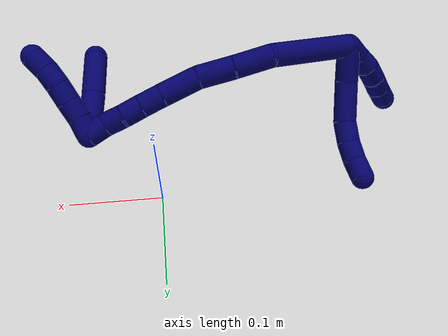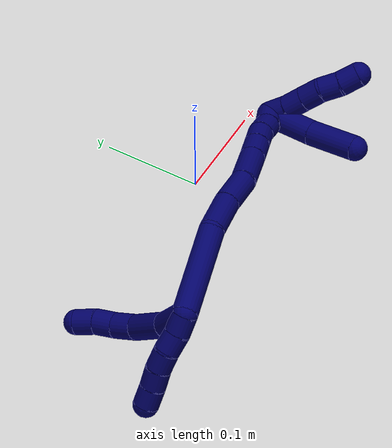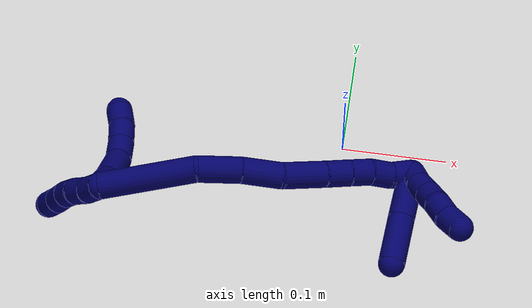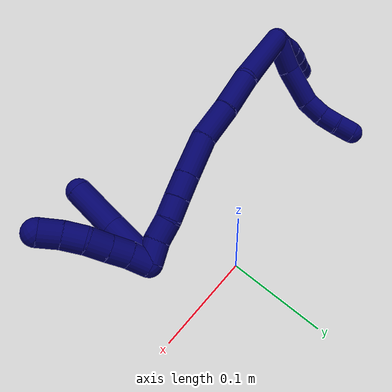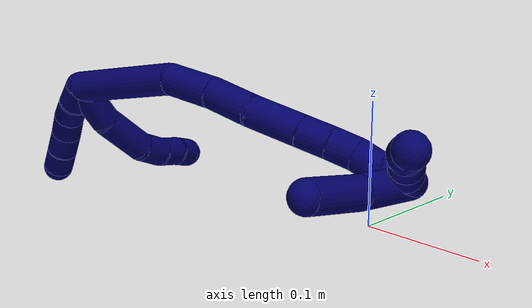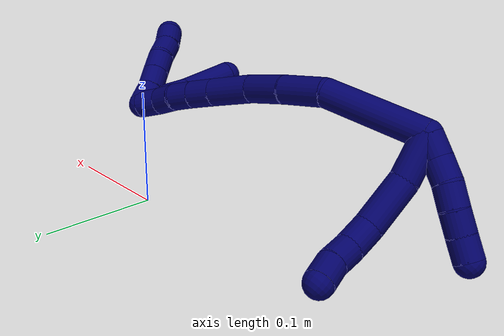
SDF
<sdf version="1.7">
 <world name="default">
  <model name="7">
   <static>0</static>
   <link name="7">
    <collision name="collision-cylinder-e_1_2_8">
     <pose>0.000364 -0.005496 -0.01894 2.85917 0.018442 0.129552</pose>
     <geometry><cylinder><radius>0.0125</radius><length>0.039449</length></cylinder></geometry>
     <surface>
      <friction><ode><mu>1.16</mu><mu2>1.16</mu2><slip1>0</slip1><slip2>0</slip2></ode></friction>
      <contact><ode><kp>1e+06</kp><kd>1</kd><max_vel>0</max_vel><min_depth>0.001</min_depth></ode></contact>
     </surface>
    </collision>
    <visual name="visual-cylinder-e_1_2_8">
     <pose>0.000364 -0.005496 -0.01894 2.85917 0.018442 0.129552</pose>
     <geometry><cylinder><radius>0.0125</radius><length>0.039449</length></cylinder></geometry>
     <material><ambient>0.003922 0 0.403922 1</ambient></material>
    </visual>
    <collision name="collision-cylinder-e_2_8_9">
     <pose>0.001228 -0.011659 -0.060329 3.11186 0.022283 1.28631</pose>
     <geometry><cylinder><radius>0.0125</radius><length>0.044929</length></cylinder></geometry>
     <surface>
      <friction><ode><mu>1.16</mu><mu2>1.16</mu2><slip1>0</slip1><slip2>0</slip2></ode></friction>
      <contact><ode><kp>1e+06</kp><kd>1</kd><max_vel>0</max_vel><min_depth>0.001</min_depth></ode></contact>
     </surface>
    </collision>
    <visual name="visual-cylinder-e_2_8_9">
     <pose>0.001228 -0.011659 -0.060329 3.11186 0.022283 1.28631</pose>
     <geometry><cylinder><radius>0.0125</radius><length>0.044929</length></cylinder></geometry>
     <material><ambient>0.003922 0 0.403922 1</ambient></material>
    </visual>
    <collision name="collision-cylinder-e_3_9_10">
     <pose>-0.000229 -0.009315 -0.094318 -2.88624 -0.162709 1.1317</pose>
     <geometry><cylinder><radius>0.0125</radius><length>0.024173</length></cylinder></geometry>
     <surface>
      <friction><ode><mu>1.16</mu><mu2>1.16</mu2><slip1>0</slip1><slip2>0</slip2></ode></friction>
      <contact><ode><kp>1e+06</kp><kd>1</kd><max_vel>0</max_vel><min_depth>0.001</min_depth></ode></contact>
     </surface>
    </collision>
    <visual name="visual-cylinder-e_3_9_10">
     <pose>-0.000229 -0.009315 -0.094318 -2.88624 -0.162709 1.1317</pose>
     <geometry><cylinder><radius>0.0125</radius><length>0.024173</length></cylinder></geometry>
     <material><ambient>0.003922 0 0.403922 1</ambient></material>
    </visual>
    <collision name="collision-cylinder-e_4_10_11">
     <pose>-0.004808 -0.001892 -0.114852 -2.68569 -0.255882 1.01265</pose>
     <geometry><cylinder><radius>0.0125</radius><length>0.020708</length></cylinder></geometry>
     <surface>
      <friction><ode><mu>1.16</mu><mu2>1.16</mu2><slip1>0</slip1><slip2>0</slip2></ode></friction>
      <contact><ode><kp>1e+06</kp><kd>1</kd><max_vel>0</max_vel><min_depth>0.001</min_depth></ode></contact>
     </surface>
    </collision>
    <visual name="visual-cylinder-e_4_10_11">
     <pose>-0.004808 -0.001892 -0.114852 -2.68569 -0.255882 1.01265</pose>
     <geometry><cylinder><radius>0.0125</radius><length>0.020708</length></cylinder></geometry>
     <material><ambient>0.003922 0 0.403922 1</ambient></material>
    </visual>
    <collision name="collision-cylinder-e_5_11_6">
     <pose>-0.011466 0.005412 -0.132949 -2.8338 -0.399914 1.835</pose>
     <geometry><cylinder><radius>0.0125</radius><length>0.020741</length></cylinder></geometry>
     <surface>
      <friction><ode><mu>1.16</mu><mu2>1.16</mu2><slip1>0</slip1><slip2>0</slip2></ode></friction>
      <contact><ode><kp>1e+06</kp><kd>1</kd><max_vel>0</max_vel><min_depth>0.001</min_depth></ode></contact>
     </surface>
    </collision>
    <visual name="visual-cylinder-e_5_11_6">
     <pose>-0.011466 0.005412 -0.132949 -2.8338 -0.399914 1.835</pose>
     <geometry><cylinder><radius>0.0125</radius><length>0.020741</length></cylinder></geometry>
     <material><ambient>0.003922 0 0.403922 1</ambient></material>
    </visual>
    <collision name="collision-cylinder-e_1_2_12">
     <pose>-0.005481 -0.006708 -0.004997 2.21101 -0.58004 -1.07262</pose>
     <geometry><cylinder><radius>0.0125</radius><length>0.02</length></cylinder></geometry>
     <surface>
      <friction><ode><mu>1.16</mu><mu2>1.16</mu2><slip1>0</slip1><slip2>0</slip2></ode></friction>
      <contact><ode><kp>1e+06</kp><kd>1</kd><max_vel>0</max_vel><min_depth>0.001</min_depth></ode></contact>
     </surface>
    </collision>
    <visual name="visual-cylinder-e_1_2_12">
     <pose>-0.005481 -0.006708 -0.004997 2.21101 -0.58004 -1.07262</pose>
     <geometry><cylinder><radius>0.0125</radius><length>0.02</length></cylinder></geometry>
     <material><ambient>0.003922 0 0.403922 1</ambient></material>
    </visual>
    <collision name="collision-cylinder-e_2_12_13">
     <pose>-0.017259 -0.018887 -0.015507 2.36016 -0.68129 -1.42119</pose>
     <geometry><cylinder><radius>0.0125</radius><length>0.02</length></cylinder></geometry>
     <surface>
      <friction><ode><mu>1.16</mu><mu2>1.16</mu2><slip1>0</slip1><slip2>0</slip2></ode></friction>
      <contact><ode><kp>1e+06</kp><kd>1</kd><max_vel>0</max_vel><min_depth>0.001</min_depth></ode></contact>
     </surface>
    </collision>
    <visual name="visual-cylinder-e_2_12_13">
     <pose>-0.017259 -0.018887 -0.015507 2.36016 -0.68129 -1.42119</pose>
     <geometry><cylinder><radius>0.0125</radius><length>0.02</length></cylinder></geometry>
     <material><ambient>0.003922 0 0.403922 1</ambient></material>
    </visual>
    <collision name="collision-cylinder-e_3_13_14">
     <pose>-0.02816 -0.030728 -0.027204 2.34115 -0.478362 -1.04578</pose>
     <geometry><cylinder><radius>0.0125</radius><length>0.02</length></cylinder></geometry>
     <surface>
      <friction><ode><mu>1.16</mu><mu2>1.16</mu2><slip1>0</slip1><slip2>0</slip2></ode></friction>
      <contact><ode><kp>1e+06</kp><kd>1</kd><max_vel>0</max_vel><min_depth>0.001</min_depth></ode></contact>
     </surface>
    </collision>
    <visual name="visual-cylinder-e_3_13_14">
     <pose>-0.02816 -0.030728 -0.027204 2.34115 -0.478362 -1.04578</pose>
     <geometry><cylinder><radius>0.0125</radius><length>0.02</length></cylinder></geometry>
     <material><ambient>0.003922 0 0.403922 1</ambient></material>
    </visual>
    <collision name="collision-cylinder-e_4_14_15">
     <pose>-0.036674 -0.044381 -0.039016 2.22898 -0.401793 -0.786525</pose>
     <geometry><cylinder><radius>0.0125</radius><length>0.02</length></cylinder></geometry>
     <surface>
      <friction><ode><mu>1.16</mu><mu2>1.16</mu2><slip1>0</slip1><slip2>0</slip2></ode></friction>
      <contact><ode><kp>1e+06</kp><kd>1</kd><max_vel>0</max_vel><min_depth>0.001</min_depth></ode></contact>
     </surface>
    </collision>
    <visual name="visual-cylinder-e_4_14_15">
     <pose>-0.036674 -0.044381 -0.039016 2.22898 -0.401793 -0.786525</pose>
     <geometry><cylinder><radius>0.0125</radius><length>0.02</length></cylinder></geometry>
     <material><ambient>0.003922 0 0.403922 1</ambient></material>
    </visual>
    <collision name="collision-cylinder-e_5_15_5">
     <pose>-0.045026 -0.058549 -0.050376 2.26475 -0.460218 -0.926717</pose>
     <geometry><cylinder><radius>0.0125</radius><length>0.02</length></cylinder></geometry>
     <surface>
      <friction><ode><mu>1.16</mu><mu2>1.16</mu2><slip1>0</slip1><slip2>0</slip2></ode></friction>
      <contact><ode><kp>1e+06</kp><kd>1</kd><max_vel>0</max_vel><min_depth>0.001</min_depth></ode></contact>
     </surface>
    </collision>
    <visual name="visual-cylinder-e_5_15_5">
     <pose>-0.045026 -0.058549 -0.050376 2.26475 -0.460218 -0.926717</pose>
     <geometry><cylinder><radius>0.0125</radius><length>0.02</length></cylinder></geometry>
     <material><ambient>0.003922 0 0.403922 1</ambient></material>
    </visual>
    <collision name="collision-cylinder-e_1_2_16">
     <pose>0.040875 0.019719 -0.006355 -1.88256 1.10169 -1.40123</pose>
     <geometry><cylinder><radius>0.0125</radius><length>0.091651</length></cylinder></geometry>
     <surface>
      <friction><ode><mu>1.16</mu><mu2>1.16</mu2><slip1>0</slip1><slip2>0</slip2></ode></friction>
      <contact><ode><kp>1e+06</kp><kd>1</kd><max_vel>0</max_vel><min_depth>0.001</min_depth></ode></contact>
     </surface>
    </collision>
    <visual name="visual-cylinder-e_1_2_16">
     <pose>0.040875 0.019719 -0.006355 -1.88256 1.10169 -1.40123</pose>
     <geometry><cylinder><radius>0.0125</radius><length>0.091651</length></cylinder></geometry>
     <material><ambient>0.003922 0 0.403922 1</ambient></material>
    </visual>
    <collision name="collision-cylinder-e_2_16_17">
     <pose>0.101325 0.042394 -0.018752 -2.68659 1.23979 -2.51429</pose>
     <geometry><cylinder><radius>0.0125</radius><length>0.041396</length></cylinder></geometry>
     <surface>
      <friction><ode><mu>1.16</mu><mu2>1.16</mu2><slip1>0</slip1><slip2>0</slip2></ode></friction>
      <contact><ode><kp>1e+06</kp><kd>1</kd><max_vel>0</max_vel><min_depth>0.001</min_depth></ode></contact>
     </surface>
    </collision>
    <visual name="visual-cylinder-e_2_16_17">
     <pose>0.101325 0.042394 -0.018752 -2.68659 1.23979 -2.51429</pose>
     <geometry><cylinder><radius>0.0125</radius><length>0.041396</length></cylinder></geometry>
     <material><ambient>0.003922 0 0.403922 1</ambient></material>
    </visual>
    <collision name="collision-cylinder-e_3_17_18">
     <pose>0.139402 0.0461 -0.029786 -2.99241 1.30448 -2.94652</pose>
     <geometry><cylinder><radius>0.0125</radius><length>0.038358</length></cylinder></geometry>
     <surface>
      <friction><ode><mu>1.16</mu><mu2>1.16</mu2><slip1>0</slip1><slip2>0</slip2></ode></friction>
      <contact><ode><kp>1e+06</kp><kd>1</kd><max_vel>0</max_vel><min_depth>0.001</min_depth></ode></contact>
     </surface>
    </collision>
    <visual name="visual-cylinder-e_3_17_18">
     <pose>0.139402 0.0461 -0.029786 -2.99241 1.30448 -2.94652</pose>
     <geometry><cylinder><radius>0.0125</radius><length>0.038358</length></cylinder></geometry>
     <material><ambient>0.003922 0 0.403922 1</ambient></material>
    </visual>
    <collision name="collision-cylinder-e_4_18_19">
     <pose>0.176352 0.049365 -0.043921 -2.87317 1.09594 -2.70614</pose>
     <geometry><cylinder><radius>0.0125</radius><length>0.041485</length></cylinder></geometry>
     <surface>
      <friction><ode><mu>1.16</mu><mu2>1.16</mu2><slip1>0</slip1><slip2>0</slip2></ode></friction>
      <contact><ode><kp>1e+06</kp><kd>1</kd><max_vel>0</max_vel><min_depth>0.001</min_depth></ode></contact>
     </surface>
    </collision>
    <visual name="visual-cylinder-e_4_18_19">
     <pose>0.176352 0.049365 -0.043921 -2.87317 1.09594 -2.70614</pose>
     <geometry><cylinder><radius>0.0125</radius><length>0.041485</length></cylinder></geometry>
     <material><ambient>0.003922 0 0.403922 1</ambient></material>
    </visual>
    <collision name="collision-cylinder-e_5_19_20">
     <pose>0.20529 0.053374 -0.058521 -2.87431 1.07628 -2.69851</pose>
     <geometry><cylinder><radius>0.0125</radius><length>0.023837</length></cylinder></geometry>
     <surface>
      <friction><ode><mu>1.16</mu><mu2>1.16</mu2><slip1>0</slip1><slip2>0</slip2></ode></friction>
      <contact><ode><kp>1e+06</kp><kd>1</kd><max_vel>0</max_vel><min_depth>0.001</min_depth></ode></contact>
     </surface>
    </collision>
    <visual name="visual-cylinder-e_5_19_20">
     <pose>0.20529 0.053374 -0.058521 -2.87431 1.07628 -2.69851</pose>
     <geometry><cylinder><radius>0.0125</radius><length>0.023837</length></cylinder></geometry>
     <material><ambient>0.003922 0 0.403922 1</ambient></material>
    </visual>
    <collision name="collision-cylinder-e_6_20_21">
     <pose>0.224955 0.055988 -0.069003 -2.92241 1.05933 -2.77005</pose>
     <geometry><cylinder><radius>0.0125</radius><length>0.021042</length></cylinder></geometry>
     <surface>
      <friction><ode><mu>1.16</mu><mu2>1.16</mu2><slip1>0</slip1><slip2>0</slip2></ode></friction>
      <contact><ode><kp>1e+06</kp><kd>1</kd><max_vel>0</max_vel><min_depth>0.001</min_depth></ode></contact>
     </surface>
    </collision>
    <visual name="visual-cylinder-e_6_20_21">
     <pose>0.224955 0.055988 -0.069003 -2.92241 1.05933 -2.77005</pose>
     <geometry><cylinder><radius>0.0125</radius><length>0.021042</length></cylinder></geometry>
     <material><ambient>0.003922 0 0.403922 1</ambient></material>
    </visual>
    <collision name="collision-cylinder-e_7_21_22">
     <pose>0.243621 0.056266 -0.07835 2.94927 1.13659 2.84175</pose>
     <geometry><cylinder><radius>0.0125</radius><length>0.020924</length></cylinder></geometry>
     <surface>
      <friction><ode><mu>1.16</mu><mu2>1.16</mu2><slip1>0</slip1><slip2>0</slip2></ode></friction>
      <contact><ode><kp>1e+06</kp><kd>1</kd><max_vel>0</max_vel><min_depth>0.001</min_depth></ode></contact>
     </surface>
    </collision>
    <visual name="visual-cylinder-e_7_21_22">
     <pose>0.243621 0.056266 -0.07835 2.94927 1.13659 2.84175</pose>
     <geometry><cylinder><radius>0.0125</radius><length>0.020924</length></cylinder></geometry>
     <material><ambient>0.003922 0 0.403922 1</ambient></material>
    </visual>
    <collision name="collision-cylinder-e_8_22_1">
     <pose>0.261955 0.056893 -0.088428 -2.892 0.979065 -2.6791</pose>
     <geometry><cylinder><radius>0.0125</radius><length>0.021307</length></cylinder></geometry>
     <surface>
      <friction><ode><mu>1.16</mu><mu2>1.16</mu2><slip1>0</slip1><slip2>0</slip2></ode></friction>
      <contact><ode><kp>1e+06</kp><kd>1</kd><max_vel>0</max_vel><min_depth>0.001</min_depth></ode></contact>
     </surface>
    </collision>
    <visual name="visual-cylinder-e_8_22_1">
     <pose>0.261955 0.056893 -0.088428 -2.892 0.979065 -2.6791</pose>
     <geometry><cylinder><radius>0.0125</radius><length>0.021307</length></cylinder></geometry>
     <material><ambient>0.003922 0 0.403922 1</ambient></material>
    </visual>
    <collision name="collision-cylinder-e_1_1_23">
     <pose>0.272352 0.04417 -0.073603 0.603611 0.062107 0.01934</pose>
     <geometry><cylinder><radius>0.0125</radius><length>0.050099</length></cylinder></geometry>
     <surface>
      <friction><ode><mu>1.16</mu><mu2>1.16</mu2><slip1>0</slip1><slip2>0</slip2></ode></friction>
      <contact><ode><kp>1e+06</kp><kd>1</kd><max_vel>0</max_vel><min_depth>0.001</min_depth></ode></contact>
     </surface>
    </collision>
    <visual name="visual-cylinder-e_1_1_23">
     <pose>0.272352 0.04417 -0.073603 0.603611 0.062107 0.01934</pose>
     <geometry><cylinder><radius>0.0125</radius><length>0.050099</length></cylinder></geometry>
     <material><ambient>0.003922 0 0.403922 1</ambient></material>
    </visual>
    <collision name="collision-cylinder-e_2_23_4">
     <pose>0.275644 0.017838 -0.031292 0.50954 0.069688 0.018156</pose>
     <geometry><cylinder><radius>0.0125</radius><length>0.049901</length></cylinder></geometry>
     <surface>
      <friction><ode><mu>1.16</mu><mu2>1.16</mu2><slip1>0</slip1><slip2>0</slip2></ode></friction>
      <contact><ode><kp>1e+06</kp><kd>1</kd><max_vel>0</max_vel><min_depth>0.001</min_depth></ode></contact>
     </surface>
    </collision>
    <visual name="visual-cylinder-e_2_23_4">
     <pose>0.275644 0.017838 -0.031292 0.50954 0.069688 0.018156</pose>
     <geometry><cylinder><radius>0.0125</radius><length>0.049901</length></cylinder></geometry>
     <material><ambient>0.003922 0 0.403922 1</ambient></material>
    </visual>
    <collision name="collision-cylinder-e_1_1_24">
     <pose>0.275365 0.058214 -0.085292 0.016493 0.474467 0.003988</pose>
     <geometry><cylinder><radius>0.0125</radius><length>0.02</length></cylinder></geometry>
     <surface>
      <friction><ode><mu>1.16</mu><mu2>1.16</mu2><slip1>0</slip1><slip2>0</slip2></ode></friction>
      <contact><ode><kp>1e+06</kp><kd>1</kd><max_vel>0</max_vel><min_depth>0.001</min_depth></ode></contact>
     </surface>
    </collision>
    <visual name="visual-cylinder-e_1_1_24">
     <pose>0.275365 0.058214 -0.085292 0.016493 0.474467 0.003988</pose>
     <geometry><cylinder><radius>0.0125</radius><length>0.02</length></cylinder></geometry>
     <material><ambient>0.003922 0 0.403922 1</ambient></material>
    </visual>
    <collision name="collision-cylinder-e_2_24_25">
     <pose>0.285308 0.059046 -0.068022 -0.116273 0.56734 -0.033932</pose>
     <geometry><cylinder><radius>0.0125</radius><length>0.02</length></cylinder></geometry>
     <surface>
      <friction><ode><mu>1.16</mu><mu2>1.16</mu2><slip1>0</slip1><slip2>0</slip2></ode></friction>
      <contact><ode><kp>1e+06</kp><kd>1</kd><max_vel>0</max_vel><min_depth>0.001</min_depth></ode></contact>
     </surface>
    </collision>
    <visual name="visual-cylinder-e_2_24_25">
     <pose>0.285308 0.059046 -0.068022 -0.116273 0.56734 -0.033932</pose>
     <geometry><cylinder><radius>0.0125</radius><length>0.02</length></cylinder></geometry>
     <material><ambient>0.003922 0 0.403922 1</ambient></material>
    </visual>
    <collision name="collision-cylinder-e_3_25_26">
     <pose>0.295809 0.060969 -0.051112 -0.110219 0.538396 -0.030437</pose>
     <geometry><cylinder><radius>0.0125</radius><length>0.02</length></cylinder></geometry>
     <surface>
      <friction><ode><mu>1.16</mu><mu2>1.16</mu2><slip1>0</slip1><slip2>0</slip2></ode></friction>
      <contact><ode><kp>1e+06</kp><kd>1</kd><max_vel>0</max_vel><min_depth>0.001</min_depth></ode></contact>
     </surface>
    </collision>
    <visual name="visual-cylinder-e_3_25_26">
     <pose>0.295809 0.060969 -0.051112 -0.110219 0.538396 -0.030437</pose>
     <geometry><cylinder><radius>0.0125</radius><length>0.02</length></cylinder></geometry>
     <material><ambient>0.003922 0 0.403922 1</ambient></material>
    </visual>
    <collision name="collision-cylinder-e_4_26_27">
     <pose>0.307075 0.060665 -0.034783 0.158709 0.660794 0.054533</pose>
     <geometry><cylinder><radius>0.0125</radius><length>0.02</length></cylinder></geometry>
     <surface>
      <friction><ode><mu>1.16</mu><mu2>1.16</mu2><slip1>0</slip1><slip2>0</slip2></ode></friction>
      <contact><ode><kp>1e+06</kp><kd>1</kd><max_vel>0</max_vel><min_depth>0.001</min_depth></ode></contact>
     </surface>
    </collision>
    <visual name="visual-cylinder-e_4_26_27">
     <pose>0.307075 0.060665 -0.034783 0.158709 0.660794 0.054533</pose>
     <geometry><cylinder><radius>0.0125</radius><length>0.02</length></cylinder></geometry>
     <material><ambient>0.003922 0 0.403922 1</ambient></material>
    </visual>
    <collision name="collision-cylinder-e_5_27_3">
     <pose>0.32029 0.059585 -0.019926 -0.023666 0.786421 -0.009818</pose>
     <geometry><cylinder><radius>0.0125</radius><length>0.02</length></cylinder></geometry>
     <surface>
      <friction><ode><mu>1.16</mu><mu2>1.16</mu2><slip1>0</slip1><slip2>0</slip2></ode></friction>
      <contact><ode><kp>1e+06</kp><kd>1</kd><max_vel>0</max_vel><min_depth>0.001</min_depth></ode></contact>
     </surface>
    </collision>
    <visual name="visual-cylinder-e_5_27_3">
     <pose>0.32029 0.059585 -0.019926 -0.023666 0.786421 -0.009818</pose>
     <geometry><cylinder><radius>0.0125</radius><length>0.02</length></cylinder></geometry>
     <material><ambient>0.003922 0 0.403922 1</ambient></material>
    </visual>
    <collision name="collision-sphere-3">
     <pose>0.327369 0.059752 -0.012864 0 -0 0</pose>
     <geometry><sphere><radius>0.0125</radius></sphere></geometry>
     <surface>
      <friction><ode><mu>1.16</mu><mu2>1.16</mu2><slip1>0</slip1><slip2>0</slip2></ode></friction>
      <contact><ode><kp>1e+06</kp><kd>1</kd><max_vel>0</max_vel><min_depth>0.001</min_depth></ode></contact>
     </surface>
    </collision>
    <visual name="visual-sphere-3">
     <pose>0.327369 0.059752 -0.012864 0 -0 0</pose>
     <geometry><sphere><radius>0.0125</radius></sphere></geometry>
     <material><ambient>0.003922 0 0.403922 1</ambient></material>
    </visual>
    <collision name="collision-sphere-27">
     <pose>0.313212 0.059417 -0.026987 0 -0 0</pose>
     <geometry><sphere><radius>0.0125</radius></sphere></geometry>
     <surface>
      <friction><ode><mu>1.16</mu><mu2>1.16</mu2><slip1>0</slip1><slip2>0</slip2></ode></friction>
      <contact><ode><kp>1e+06</kp><kd>1</kd><max_vel>0</max_vel><min_depth>0.001</min_depth></ode></contact>
     </surface>
    </collision>
    <visual name="visual-sphere-27">
     <pose>0.313212 0.059417 -0.026987 0 -0 0</pose>
     <geometry><sphere><radius>0.0125</radius></sphere></geometry>
     <material><ambient>0.003922 0 0.403922 1</ambient></material>
    </visual>
    <collision name="collision-sphere-26">
     <pose>0.300937 0.061913 -0.042579 0 -0 0</pose>
     <geometry><sphere><radius>0.0125</radius></sphere></geometry>
     <surface>
      <friction><ode><mu>1.16</mu><mu2>1.16</mu2><slip1>0</slip1><slip2>0</slip2></ode></friction>
      <contact><ode><kp>1e+06</kp><kd>1</kd><max_vel>0</max_vel><min_depth>0.001</min_depth></ode></contact>
     </surface>
    </collision>
    <visual name="visual-sphere-26">
     <pose>0.300937 0.061913 -0.042579 0 -0 0</pose>
     <geometry><sphere><radius>0.0125</radius></sphere></geometry>
     <material><ambient>0.003922 0 0.403922 1</ambient></material>
    </visual>
    <collision name="collision-sphere-25">
     <pose>0.290682 0.060024 -0.059645 0 -0 0</pose>
     <geometry><sphere><radius>0.0125</radius></sphere></geometry>
     <surface>
      <friction><ode><mu>1.16</mu><mu2>1.16</mu2><slip1>0</slip1><slip2>0</slip2></ode></friction>
      <contact><ode><kp>1e+06</kp><kd>1</kd><max_vel>0</max_vel><min_depth>0.001</min_depth></ode></contact>
     </surface>
    </collision>
    <visual name="visual-sphere-25">
     <pose>0.290682 0.060024 -0.059645 0 -0 0</pose>
     <geometry><sphere><radius>0.0125</radius></sphere></geometry>
     <material><ambient>0.003922 0 0.403922 1</ambient></material>
    </visual>
    <collision name="collision-sphere-24">
     <pose>0.279934 0.058068 -0.076398 0 -0 0</pose>
     <geometry><sphere><radius>0.0125</radius></sphere></geometry>
     <surface>
      <friction><ode><mu>1.16</mu><mu2>1.16</mu2><slip1>0</slip1><slip2>0</slip2></ode></friction>
      <contact><ode><kp>1e+06</kp><kd>1</kd><max_vel>0</max_vel><min_depth>0.001</min_depth></ode></contact>
     </surface>
    </collision>
    <visual name="visual-sphere-24">
     <pose>0.279934 0.058068 -0.076398 0 -0 0</pose>
     <geometry><sphere><radius>0.0125</radius></sphere></geometry>
     <material><ambient>0.003922 0 0.403922 1</ambient></material>
    </visual>
    <collision name="collision-sphere-4">
     <pose>0.277381 0.005697 -0.009564 0 -0 0</pose>
     <geometry><sphere><radius>0.0125</radius></sphere></geometry>
     <surface>
      <friction><ode><mu>1.16</mu><mu2>1.16</mu2><slip1>0</slip1><slip2>0</slip2></ode></friction>
      <contact><ode><kp>1e+06</kp><kd>1</kd><max_vel>0</max_vel><min_depth>0.001</min_depth></ode></contact>
     </surface>
    </collision>
    <visual name="visual-sphere-4">
     <pose>0.277381 0.005697 -0.009564 0 -0 0</pose>
     <geometry><sphere><radius>0.0125</radius></sphere></geometry>
     <material><ambient>0.003922 0 0.403922 1</ambient></material>
    </visual>
    <collision name="collision-sphere-23">
     <pose>0.273906 0.029979 -0.05302 0 -0 0</pose>
     <geometry><sphere><radius>0.0125</radius></sphere></geometry>
     <surface>
      <friction><ode><mu>1.16</mu><mu2>1.16</mu2><slip1>0</slip1><slip2>0</slip2></ode></friction>
      <contact><ode><kp>1e+06</kp><kd>1</kd><max_vel>0</max_vel><min_depth>0.001</min_depth></ode></contact>
     </surface>
    </collision>
    <visual name="visual-sphere-23">
     <pose>0.273906 0.029979 -0.05302 0 -0 0</pose>
     <geometry><sphere><radius>0.0125</radius></sphere></geometry>
     <material><ambient>0.003922 0 0.403922 1</ambient></material>
    </visual>
    <collision name="collision-sphere-1">
     <pose>0.270797 0.058361 -0.094187 0 -0 0</pose>
     <geometry><sphere><radius>0.0125</radius></sphere></geometry>
     <surface>
      <friction><ode><mu>1.16</mu><mu2>1.16</mu2><slip1>0</slip1><slip2>0</slip2></ode></friction>
      <contact><ode><kp>1e+06</kp><kd>1</kd><max_vel>0</max_vel><min_depth>0.001</min_depth></ode></contact>
     </surface>
    </collision>
    <visual name="visual-sphere-1">
     <pose>0.270797 0.058361 -0.094187 0 -0 0</pose>
     <geometry><sphere><radius>0.0125</radius></sphere></geometry>
     <material><ambient>0.003922 0 0.403922 1</ambient></material>
    </visual>
    <collision name="collision-sphere-22">
     <pose>0.253112 0.055425 -0.08267 0 -0 0</pose>
     <geometry><sphere><radius>0.0125</radius></sphere></geometry>
     <surface>
      <friction><ode><mu>1.16</mu><mu2>1.16</mu2><slip1>0</slip1><slip2>0</slip2></ode></friction>
      <contact><ode><kp>1e+06</kp><kd>1</kd><max_vel>0</max_vel><min_depth>0.001</min_depth></ode></contact>
     </surface>
    </collision>
    <visual name="visual-sphere-22">
     <pose>0.253112 0.055425 -0.08267 0 -0 0</pose>
     <geometry><sphere><radius>0.0125</radius></sphere></geometry>
     <material><ambient>0.003922 0 0.403922 1</ambient></material>
    </visual>
    <collision name="collision-sphere-21">
     <pose>0.23413 0.057108 -0.07403 0 -0 0</pose>
     <geometry><sphere><radius>0.0125</radius></sphere></geometry>
     <surface>
      <friction><ode><mu>1.16</mu><mu2>1.16</mu2><slip1>0</slip1><slip2>0</slip2></ode></friction>
      <contact><ode><kp>1e+06</kp><kd>1</kd><max_vel>0</max_vel><min_depth>0.001</min_depth></ode></contact>
     </surface>
    </collision>
    <visual name="visual-sphere-21">
     <pose>0.23413 0.057108 -0.07403 0 -0 0</pose>
     <geometry><sphere><radius>0.0125</radius></sphere></geometry>
     <material><ambient>0.003922 0 0.403922 1</ambient></material>
    </visual>
    <collision name="collision-sphere-6">
     <pose>-0.015504 0.008306 -0.142052 0 -0 0</pose>
     <geometry><sphere><radius>0.0125</radius></sphere></geometry>
     <surface>
      <friction><ode><mu>1.16</mu><mu2>1.16</mu2><slip1>0</slip1><slip2>0</slip2></ode></friction>
      <contact><ode><kp>1e+06</kp><kd>1</kd><max_vel>0</max_vel><min_depth>0.001</min_depth></ode></contact>
     </surface>
    </collision>
    <visual name="visual-sphere-6">
     <pose>-0.015504 0.008306 -0.142052 0 -0 0</pose>
     <geometry><sphere><radius>0.0125</radius></sphere></geometry>
     <material><ambient>0.003922 0 0.403922 1</ambient></material>
    </visual>
    <collision name="collision-sphere-11">
     <pose>-0.007428 0.002518 -0.123845 0 -0 0</pose>
     <geometry><sphere><radius>0.0125</radius></sphere></geometry>
     <surface>
      <friction><ode><mu>1.16</mu><mu2>1.16</mu2><slip1>0</slip1><slip2>0</slip2></ode></friction>
      <contact><ode><kp>1e+06</kp><kd>1</kd><max_vel>0</max_vel><min_depth>0.001</min_depth></ode></contact>
     </surface>
    </collision>
    <visual name="visual-sphere-11">
     <pose>-0.007428 0.002518 -0.123845 0 -0 0</pose>
     <geometry><sphere><radius>0.0125</radius></sphere></geometry>
     <material><ambient>0.003922 0 0.403922 1</ambient></material>
    </visual>
    <collision name="collision-sphere-10">
     <pose>-0.002187 -0.006302 -0.105858 0 -0 0</pose>
     <geometry><sphere><radius>0.0125</radius></sphere></geometry>
     <surface>
      <friction><ode><mu>1.16</mu><mu2>1.16</mu2><slip1>0</slip1><slip2>0</slip2></ode></friction>
      <contact><ode><kp>1e+06</kp><kd>1</kd><max_vel>0</max_vel><min_depth>0.001</min_depth></ode></contact>
     </surface>
    </collision>
    <visual name="visual-sphere-10">
     <pose>-0.002187 -0.006302 -0.105858 0 -0 0</pose>
     <geometry><sphere><radius>0.0125</radius></sphere></geometry>
     <material><ambient>0.003922 0 0.403922 1</ambient></material>
    </visual>
    <collision name="collision-sphere-9">
     <pose>0.001729 -0.012327 -0.082778 0 -0 0</pose>
     <geometry><sphere><radius>0.0125</radius></sphere></geometry>
     <surface>
      <friction><ode><mu>1.16</mu><mu2>1.16</mu2><slip1>0</slip1><slip2>0</slip2></ode></friction>
      <contact><ode><kp>1e+06</kp><kd>1</kd><max_vel>0</max_vel><min_depth>0.001</min_depth></ode></contact>
     </surface>
    </collision>
    <visual name="visual-sphere-9">
     <pose>0.001729 -0.012327 -0.082778 0 -0 0</pose>
     <geometry><sphere><radius>0.0125</radius></sphere></geometry>
     <material><ambient>0.003922 0 0.403922 1</ambient></material>
    </visual>
    <collision name="collision-sphere-2">
     <geometry><sphere><radius>0.0125</radius></sphere></geometry>
     <surface>
      <friction><ode><mu>1.16</mu><mu2>1.16</mu2><slip1>0</slip1><slip2>0</slip2></ode></friction>
      <contact><ode><kp>1e+06</kp><kd>1</kd><max_vel>0</max_vel><min_depth>0.001</min_depth></ode></contact>
     </surface>
    </collision>
    <visual name="visual-sphere-2">
     <geometry><sphere><radius>0.0125</radius></sphere></geometry>
     <material><ambient>0.003922 0 0.403922 1</ambient></material>
    </visual>
    <collision name="collision-sphere-19">
     <pose>0.194799 0.05188 -0.053065 0 -0 0</pose>
     <geometry><sphere><radius>0.0125</radius></sphere></geometry>
     <surface>
      <friction><ode><mu>1.16</mu><mu2>1.16</mu2><slip1>0</slip1><slip2>0</slip2></ode></friction>
      <contact><ode><kp>1e+06</kp><kd>1</kd><max_vel>0</max_vel><min_depth>0.001</min_depth></ode></contact>
     </surface>
    </collision>
    <visual name="visual-sphere-19">
     <pose>0.194799 0.05188 -0.053065 0 -0 0</pose>
     <geometry><sphere><radius>0.0125</radius></sphere></geometry>
     <material><ambient>0.003922 0 0.403922 1</ambient></material>
    </visual>
    <collision name="collision-sphere-8">
     <pose>0.000727 -0.010992 -0.03788 0 -0 0</pose>
     <geometry><sphere><radius>0.0125</radius></sphere></geometry>
     <surface>
      <friction><ode><mu>1.16</mu><mu2>1.16</mu2><slip1>0</slip1><slip2>0</slip2></ode></friction>
      <contact><ode><kp>1e+06</kp><kd>1</kd><max_vel>0</max_vel><min_depth>0.001</min_depth></ode></contact>
     </surface>
    </collision>
    <visual name="visual-sphere-8">
     <pose>0.000727 -0.010992 -0.03788 0 -0 0</pose>
     <geometry><sphere><radius>0.0125</radius></sphere></geometry>
     <material><ambient>0.003922 0 0.403922 1</ambient></material>
    </visual>
    <collision name="collision-sphere-12">
     <pose>-0.010961 -0.013416 -0.009993 0 -0 0</pose>
     <geometry><sphere><radius>0.0125</radius></sphere></geometry>
     <surface>
      <friction><ode><mu>1.16</mu><mu2>1.16</mu2><slip1>0</slip1><slip2>0</slip2></ode></friction>
      <contact><ode><kp>1e+06</kp><kd>1</kd><max_vel>0</max_vel><min_depth>0.001</min_depth></ode></contact>
     </surface>
    </collision>
    <visual name="visual-sphere-12">
     <pose>-0.010961 -0.013416 -0.009993 0 -0 0</pose>
     <geometry><sphere><radius>0.0125</radius></sphere></geometry>
     <material><ambient>0.003922 0 0.403922 1</ambient></material>
    </visual>
    <collision name="collision-sphere-13">
     <pose>-0.023557 -0.024357 -0.021022 0 -0 0</pose>
     <geometry><sphere><radius>0.0125</radius></sphere></geometry>
     <surface>
      <friction><ode><mu>1.16</mu><mu2>1.16</mu2><slip1>0</slip1><slip2>0</slip2></ode></friction>
      <contact><ode><kp>1e+06</kp><kd>1</kd><max_vel>0</max_vel><min_depth>0.001</min_depth></ode></contact>
     </surface>
    </collision>
    <visual name="visual-sphere-13">
     <pose>-0.023557 -0.024357 -0.021022 0 -0 0</pose>
     <geometry><sphere><radius>0.0125</radius></sphere></geometry>
     <material><ambient>0.003922 0 0.403922 1</ambient></material>
    </visual>
    <collision name="collision-sphere-14">
     <pose>-0.032764 -0.0371 -0.033386 0 -0 0</pose>
     <geometry><sphere><radius>0.0125</radius></sphere></geometry>
     <surface>
      <friction><ode><mu>1.16</mu><mu2>1.16</mu2><slip1>0</slip1><slip2>0</slip2></ode></friction>
      <contact><ode><kp>1e+06</kp><kd>1</kd><max_vel>0</max_vel><min_depth>0.001</min_depth></ode></contact>
     </surface>
    </collision>
    <visual name="visual-sphere-14">
     <pose>-0.032764 -0.0371 -0.033386 0 -0 0</pose>
     <geometry><sphere><radius>0.0125</radius></sphere></geometry>
     <material><ambient>0.003922 0 0.403922 1</ambient></material>
    </visual>
    <collision name="collision-sphere-15">
     <pose>-0.040585 -0.051662 -0.044646 0 -0 0</pose>
     <geometry><sphere><radius>0.0125</radius></sphere></geometry>
     <surface>
      <friction><ode><mu>1.16</mu><mu2>1.16</mu2><slip1>0</slip1><slip2>0</slip2></ode></friction>
      <contact><ode><kp>1e+06</kp><kd>1</kd><max_vel>0</max_vel><min_depth>0.001</min_depth></ode></contact>
     </surface>
    </collision>
    <visual name="visual-sphere-15">
     <pose>-0.040585 -0.051662 -0.044646 0 -0 0</pose>
     <geometry><sphere><radius>0.0125</radius></sphere></geometry>
     <material><ambient>0.003922 0 0.403922 1</ambient></material>
    </visual>
    <collision name="collision-sphere-5">
     <pose>-0.049468 -0.065436 -0.056106 0 -0 0</pose>
     <geometry><sphere><radius>0.0125</radius></sphere></geometry>
     <surface>
      <friction><ode><mu>1.16</mu><mu2>1.16</mu2><slip1>0</slip1><slip2>0</slip2></ode></friction>
      <contact><ode><kp>1e+06</kp><kd>1</kd><max_vel>0</max_vel><min_depth>0.001</min_depth></ode></contact>
     </surface>
    </collision>
    <visual name="visual-sphere-5">
     <pose>-0.049468 -0.065436 -0.056106 0 -0 0</pose>
     <geometry><sphere><radius>0.0125</radius></sphere></geometry>
     <material><ambient>0.003922 0 0.403922 1</ambient></material>
    </visual>
    <collision name="collision-sphere-16">
     <pose>0.08175 0.039437 -0.01271 0 -0 0</pose>
     <geometry><sphere><radius>0.0125</radius></sphere></geometry>
     <surface>
      <friction><ode><mu>1.16</mu><mu2>1.16</mu2><slip1>0</slip1><slip2>0</slip2></ode></friction>
      <contact><ode><kp>1e+06</kp><kd>1</kd><max_vel>0</max_vel><min_depth>0.001</min_depth></ode></contact>
     </surface>
    </collision>
    <visual name="visual-sphere-16">
     <pose>0.08175 0.039437 -0.01271 0 -0 0</pose>
     <geometry><sphere><radius>0.0125</radius></sphere></geometry>
     <material><ambient>0.003922 0 0.403922 1</ambient></material>
    </visual>
    <collision name="collision-sphere-17">
     <pose>0.120899 0.04535 -0.024794 0 -0 0</pose>
     <geometry><sphere><radius>0.0125</radius></sphere></geometry>
     <surface>
      <friction><ode><mu>1.16</mu><mu2>1.16</mu2><slip1>0</slip1><slip2>0</slip2></ode></friction>
      <contact><ode><kp>1e+06</kp><kd>1</kd><max_vel>0</max_vel><min_depth>0.001</min_depth></ode></contact>
     </surface>
    </collision>
    <visual name="visual-sphere-17">
     <pose>0.120899 0.04535 -0.024794 0 -0 0</pose>
     <geometry><sphere><radius>0.0125</radius></sphere></geometry>
     <material><ambient>0.003922 0 0.403922 1</ambient></material>
    </visual>
    <collision name="collision-sphere-18">
     <pose>0.157905 0.04685 -0.034777 0 -0 0</pose>
     <geometry><sphere><radius>0.0125</radius></sphere></geometry>
     <surface>
      <friction><ode><mu>1.16</mu><mu2>1.16</mu2><slip1>0</slip1><slip2>0</slip2></ode></friction>
      <contact><ode><kp>1e+06</kp><kd>1</kd><max_vel>0</max_vel><min_depth>0.001</min_depth></ode></contact>
     </surface>
    </collision>
    <visual name="visual-sphere-18">
     <pose>0.157905 0.04685 -0.034777 0 -0 0</pose>
     <geometry><sphere><radius>0.0125</radius></sphere></geometry>
     <material><ambient>0.003922 0 0.403922 1</ambient></material>
    </visual>
    <collision name="collision-sphere-20">
     <pose>0.215781 0.054868 -0.063977 0 -0 0</pose>
     <geometry><sphere><radius>0.0125</radius></sphere></geometry>
     <surface>
      <friction><ode><mu>1.16</mu><mu2>1.16</mu2><slip1>0</slip1><slip2>0</slip2></ode></friction>
      <contact><ode><kp>1e+06</kp><kd>1</kd><max_vel>0</max_vel><min_depth>0.001</min_depth></ode></contact>
     </surface>
    </collision>
    <visual name="visual-sphere-20">
     <pose>0.215781 0.054868 -0.063977 0 -0 0</pose>
     <geometry><sphere><radius>0.0125</radius></sphere></geometry>
     <material><ambient>0.003922 0 0.403922 1</ambient></material>
    </visual>
    <inertial>
     <pose>0.126748 0.022951 -0.046321 0 -0 0</pose>
     <mass>0.75</mass>
     <inertia>
      <ixx>3.6e-05</ixx>
      <ixy>0</ixy>
      <ixz>0</ixz>
      <iyy>7.1e-05</iyy>
      <iyz>0</iyz>
      <izz>-0.000111</izz>
     </inertia>
    </inertial>
   </link>
   <pose>-0.21334 -0.113788 0.094976 0.893672 0.070325 -0.148315</pose>
  </model>
 </world>
</sdf>
